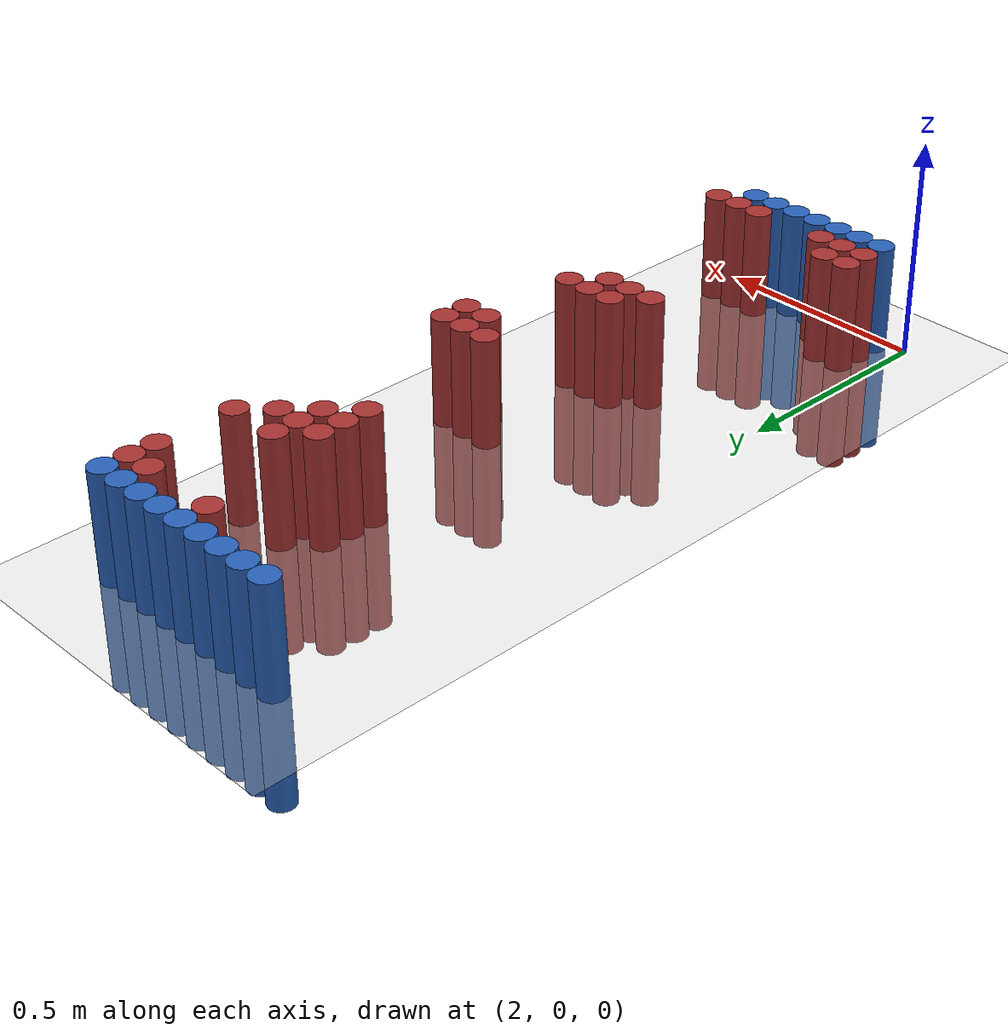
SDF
<sdf version="1.6">
 <world name="default">
  <model name="ground_plane">
   <static>1</static>
   <link name="link">
    <collision name="collision">
     <geometry><plane><normal>0 0 1</normal><size>100 100</size></plane></geometry>
     <surface><friction><ode><mu>100</mu><mu2>50</mu2></ode></friction></surface>
    </collision>
    <visual name="visual">
     <cast_shadows>0</cast_shadows>
     <geometry><plane><normal>0 0 1</normal><size>100 100</size></plane></geometry>
     <material>
      <script><uri>file://media/materials/scripts/gazebo.material</uri><name>Gazebo/Grey</name></script>
     </material>
    </visual>
   </link>
  </model>
  <model name="unit_cylinder_94">
   <static>1</static>
   <pose>2.010000 1.770000 0.000000 0.000000 0.000000 0.000000</pose>
   <link name="link">
    <inertial>
     <mass>1</mass>
     <inertia><ixx>0.145833</ixx><ixy>0</ixy><ixz>0</ixz><iyy>0.145833</iyy><iyz>0</iyz><izz>0.125</izz></inertia>
    </inertial>
    <collision name="collision">
     <geometry><cylinder><radius>0.030000</radius><length>0.5</length></cylinder></geometry>
    </collision>
    <visual name="visual">
     <geometry><cylinder><radius>0.030000</radius><length>0.5</length></cylinder></geometry>
     <material>
      <ambient>0.152000 0.379000 0.720000 1</ambient>
      <diffuse>0.152000 0.379000 0.720000 1</diffuse>
     </material>
     <material>
      <script><name>Gazebo/Grey</name><uri>file://media/materials/scripts/gazebo.material</uri></script>
     </material>
    </visual>
   </link>
  </model>
  <model name="unit_cylinder_95">
   <static>1</static>
   <pose>2.070000 1.770000 0.000000 0.000000 0.000000 0.000000</pose>
   <link name="link">
    <inertial>
     <mass>1</mass>
     <inertia><ixx>0.145833</ixx><ixy>0</ixy><ixz>0</ixz><iyy>0.145833</iyy><iyz>0</iyz><izz>0.125</izz></inertia>
    </inertial>
    <collision name="collision">
     <geometry><cylinder><radius>0.030000</radius><length>0.5</length></cylinder></geometry>
    </collision>
    <visual name="visual">
     <geometry><cylinder><radius>0.030000</radius><length>0.5</length></cylinder></geometry>
     <material>
      <ambient>0.152000 0.379000 0.720000 1</ambient>
      <diffuse>0.152000 0.379000 0.720000 1</diffuse>
     </material>
     <material>
      <script><name>Gazebo/Grey</name><uri>file://media/materials/scripts/gazebo.material</uri></script>
     </material>
    </visual>
   </link>
  </model>
  <model name="unit_cylinder_96">
   <static>1</static>
   <pose>2.130000 1.770000 0.000000 0.000000 0.000000 0.000000</pose>
   <link name="link">
    <inertial>
     <mass>1</mass>
     <inertia><ixx>0.145833</ixx><ixy>0</ixy><ixz>0</ixz><iyy>0.145833</iyy><iyz>0</iyz><izz>0.125</izz></inertia>
    </inertial>
    <collision name="collision">
     <geometry><cylinder><radius>0.030000</radius><length>0.5</length></cylinder></geometry>
    </collision>
    <visual name="visual">
     <geometry><cylinder><radius>0.030000</radius><length>0.5</length></cylinder></geometry>
     <material>
      <ambient>0.152000 0.379000 0.720000 1</ambient>
      <diffuse>0.152000 0.379000 0.720000 1</diffuse>
     </material>
     <material>
      <script><name>Gazebo/Grey</name><uri>file://media/materials/scripts/gazebo.material</uri></script>
     </material>
    </visual>
   </link>
  </model>
  <model name="unit_cylinder_97">
   <static>1</static>
   <pose>2.190000 1.770000 0.000000 0.000000 0.000000 0.000000</pose>
   <link name="link">
    <inertial>
     <mass>1</mass>
     <inertia><ixx>0.145833</ixx><ixy>0</ixy><ixz>0</ixz><iyy>0.145833</iyy><iyz>0</iyz><izz>0.125</izz></inertia>
    </inertial>
    <collision name="collision">
     <geometry><cylinder><radius>0.030000</radius><length>0.5</length></cylinder></geometry>
    </collision>
    <visual name="visual">
     <geometry><cylinder><radius>0.030000</radius><length>0.5</length></cylinder></geometry>
     <material>
      <ambient>0.152000 0.379000 0.720000 1</ambient>
      <diffuse>0.152000 0.379000 0.720000 1</diffuse>
     </material>
     <material>
      <script><name>Gazebo/Grey</name><uri>file://media/materials/scripts/gazebo.material</uri></script>
     </material>
    </visual>
   </link>
  </model>
  <model name="unit_cylinder_98">
   <static>1</static>
   <pose>2.250000 1.770000 0.000000 0.000000 0.000000 0.000000</pose>
   <link name="link">
    <inertial>
     <mass>1</mass>
     <inertia><ixx>0.145833</ixx><ixy>0</ixy><ixz>0</ixz><iyy>0.145833</iyy><iyz>0</iyz><izz>0.125</izz></inertia>
    </inertial>
    <collision name="collision">
     <geometry><cylinder><radius>0.030000</radius><length>0.5</length></cylinder></geometry>
    </collision>
    <visual name="visual">
     <geometry><cylinder><radius>0.030000</radius><length>0.5</length></cylinder></geometry>
     <material>
      <ambient>0.152000 0.379000 0.720000 1</ambient>
      <diffuse>0.152000 0.379000 0.720000 1</diffuse>
     </material>
     <material>
      <script><name>Gazebo/Grey</name><uri>file://media/materials/scripts/gazebo.material</uri></script>
     </material>
    </visual>
   </link>
  </model>
  <model name="unit_cylinder_99">
   <static>1</static>
   <pose>2.310000 1.770000 0.000000 0.000000 0.000000 0.000000</pose>
   <link name="link">
    <inertial>
     <mass>1</mass>
     <inertia><ixx>0.145833</ixx><ixy>0</ixy><ixz>0</ixz><iyy>0.145833</iyy><iyz>0</iyz><izz>0.125</izz></inertia>
    </inertial>
    <collision name="collision">
     <geometry><cylinder><radius>0.030000</radius><length>0.5</length></cylinder></geometry>
    </collision>
    <visual name="visual">
     <geometry><cylinder><radius>0.030000</radius><length>0.5</length></cylinder></geometry>
     <material>
      <ambient>0.152000 0.379000 0.720000 1</ambient>
      <diffuse>0.152000 0.379000 0.720000 1</diffuse>
     </material>
     <material>
      <script><name>Gazebo/Grey</name><uri>file://media/materials/scripts/gazebo.material</uri></script>
     </material>
    </visual>
   </link>
  </model>
  <model name="unit_cylinder_100">
   <static>1</static>
   <pose>2.370000 1.770000 0.000000 0.000000 0.000000 0.000000</pose>
   <link name="link">
    <inertial>
     <mass>1</mass>
     <inertia><ixx>0.145833</ixx><ixy>0</ixy><ixz>0</ixz><iyy>0.145833</iyy><iyz>0</iyz><izz>0.125</izz></inertia>
    </inertial>
    <collision name="collision">
     <geometry><cylinder><radius>0.030000</radius><length>0.5</length></cylinder></geometry>
    </collision>
    <visual name="visual">
     <geometry><cylinder><radius>0.030000</radius><length>0.5</length></cylinder></geometry>
     <material>
      <ambient>0.152000 0.379000 0.720000 1</ambient>
      <diffuse>0.152000 0.379000 0.720000 1</diffuse>
     </material>
     <material>
      <script><name>Gazebo/Grey</name><uri>file://media/materials/scripts/gazebo.material</uri></script>
     </material>
    </visual>
   </link>
  </model>
  <model name="unit_cylinder_101">
   <static>1</static>
   <pose>2.430000 1.770000 0.000000 0.000000 0.000000 0.000000</pose>
   <link name="link">
    <inertial>
     <mass>1</mass>
     <inertia><ixx>0.145833</ixx><ixy>0</ixy><ixz>0</ixz><iyy>0.145833</iyy><iyz>0</iyz><izz>0.125</izz></inertia>
    </inertial>
    <collision name="collision">
     <geometry><cylinder><radius>0.030000</radius><length>0.5</length></cylinder></geometry>
    </collision>
    <visual name="visual">
     <geometry><cylinder><radius>0.030000</radius><length>0.5</length></cylinder></geometry>
     <material>
      <ambient>0.152000 0.379000 0.720000 1</ambient>
      <diffuse>0.152000 0.379000 0.720000 1</diffuse>
     </material>
     <material>
      <script><name>Gazebo/Grey</name><uri>file://media/materials/scripts/gazebo.material</uri></script>
     </material>
    </visual>
   </link>
  </model>
  <model name="unit_cylinder_102">
   <static>1</static>
   <pose>2.490000 1.770000 0.000000 0.000000 0.000000 0.000000</pose>
   <link name="link">
    <inertial>
     <mass>1</mass>
     <inertia><ixx>0.145833</ixx><ixy>0</ixy><ixz>0</ixz><iyy>0.145833</iyy><iyz>0</iyz><izz>0.125</izz></inertia>
    </inertial>
    <collision name="collision">
     <geometry><cylinder><radius>0.030000</radius><length>0.5</length></cylinder></geometry>
    </collision>
    <visual name="visual">
     <geometry><cylinder><radius>0.030000</radius><length>0.5</length></cylinder></geometry>
     <material>
      <ambient>0.152000 0.379000 0.720000 1</ambient>
      <diffuse>0.152000 0.379000 0.720000 1</diffuse>
     </material>
     <material>
      <script><name>Gazebo/Grey</name><uri>file://media/materials/scripts/gazebo.material</uri></script>
     </material>
    </visual>
   </link>
  </model>
  <model name="unit_cylinder_125">
   <static>1</static>
   <pose>2.250000 1.710000 0.000000 0.000000 0.000000 0.000000</pose>
   <link name="link">
    <inertial>
     <mass>1</mass>
     <inertia><ixx>0.145833</ixx><ixy>0</ixy><ixz>0</ixz><iyy>0.145833</iyy><iyz>0</iyz><izz>0.125</izz></inertia>
    </inertial>
    <collision name="collision">
     <geometry><cylinder><radius>0.030000</radius><length>0.5</length></cylinder></geometry>
    </collision>
    <visual name="visual">
     <geometry><cylinder><radius>0.030000</radius><length>0.5</length></cylinder></geometry>
     <material>
      <ambient>0.648000 0.192000 0.192000 1</ambient>
      <diffuse>0.648000 0.192000 0.192000 1</diffuse>
     </material>
     <material>
      <script><name>Gazebo/Grey</name><uri>file://media/materials/scripts/gazebo.material</uri></script>
     </material>
    </visual>
   </link>
  </model>
  <model name="unit_cylinder_126">
   <static>1</static>
   <pose>2.430000 1.710000 0.000000 0.000000 0.000000 0.000000</pose>
   <link name="link">
    <inertial>
     <mass>1</mass>
     <inertia><ixx>0.145833</ixx><ixy>0</ixy><ixz>0</ixz><iyy>0.145833</iyy><iyz>0</iyz><izz>0.125</izz></inertia>
    </inertial>
    <collision name="collision">
     <geometry><cylinder><radius>0.030000</radius><length>0.5</length></cylinder></geometry>
    </collision>
    <visual name="visual">
     <geometry><cylinder><radius>0.030000</radius><length>0.5</length></cylinder></geometry>
     <material>
      <ambient>0.648000 0.192000 0.192000 1</ambient>
      <diffuse>0.648000 0.192000 0.192000 1</diffuse>
     </material>
     <material>
      <script><name>Gazebo/Grey</name><uri>file://media/materials/scripts/gazebo.material</uri></script>
     </material>
    </visual>
   </link>
  </model>
  <model name="unit_cylinder_127">
   <static>1</static>
   <pose>2.490000 1.710000 0.000000 0.000000 0.000000 0.000000</pose>
   <link name="link">
    <inertial>
     <mass>1</mass>
     <inertia><ixx>0.145833</ixx><ixy>0</ixy><ixz>0</ixz><iyy>0.145833</iyy><iyz>0</iyz><izz>0.125</izz></inertia>
    </inertial>
    <collision name="collision">
     <geometry><cylinder><radius>0.030000</radius><length>0.5</length></cylinder></geometry>
    </collision>
    <visual name="visual">
     <geometry><cylinder><radius>0.030000</radius><length>0.5</length></cylinder></geometry>
     <material>
      <ambient>0.648000 0.192000 0.192000 1</ambient>
      <diffuse>0.648000 0.192000 0.192000 1</diffuse>
     </material>
     <material>
      <script><name>Gazebo/Grey</name><uri>file://media/materials/scripts/gazebo.material</uri></script>
     </material>
    </visual>
   </link>
  </model>
  <model name="unit_cylinder_136">
   <static>1</static>
   <pose>2.490000 1.650000 0.000000 0.000000 0.000000 0.000000</pose>
   <link name="link">
    <inertial>
     <mass>1</mass>
     <inertia><ixx>0.145833</ixx><ixy>0</ixy><ixz>0</ixz><iyy>0.145833</iyy><iyz>0</iyz><izz>0.125</izz></inertia>
    </inertial>
    <collision name="collision">
     <geometry><cylinder><radius>0.030000</radius><length>0.5</length></cylinder></geometry>
    </collision>
    <visual name="visual">
     <geometry><cylinder><radius>0.030000</radius><length>0.5</length></cylinder></geometry>
     <material>
      <ambient>0.648000 0.192000 0.192000 1</ambient>
      <diffuse>0.648000 0.192000 0.192000 1</diffuse>
     </material>
     <material>
      <script><name>Gazebo/Grey</name><uri>file://media/materials/scripts/gazebo.material</uri></script>
     </material>
    </visual>
   </link>
  </model>
  <model name="unit_cylinder_162">
   <static>1</static>
   <pose>2.370000 1.470000 0.000000 0.000000 0.000000 0.000000</pose>
   <link name="link">
    <inertial>
     <mass>1</mass>
     <inertia><ixx>0.145833</ixx><ixy>0</ixy><ixz>0</ixz><iyy>0.145833</iyy><iyz>0</iyz><izz>0.125</izz></inertia>
    </inertial>
    <collision name="collision">
     <geometry><cylinder><radius>0.030000</radius><length>0.5</length></cylinder></geometry>
    </collision>
    <visual name="visual">
     <geometry><cylinder><radius>0.030000</radius><length>0.5</length></cylinder></geometry>
     <material>
      <ambient>0.648000 0.192000 0.192000 1</ambient>
      <diffuse>0.648000 0.192000 0.192000 1</diffuse>
     </material>
     <material>
      <script><name>Gazebo/Grey</name><uri>file://media/materials/scripts/gazebo.material</uri></script>
     </material>
    </visual>
   </link>
  </model>
  <model name="unit_cylinder_163">
   <static>1</static>
   <pose>2.490000 1.470000 0.000000 0.000000 0.000000 0.000000</pose>
   <link name="link">
    <inertial>
     <mass>1</mass>
     <inertia><ixx>0.145833</ixx><ixy>0</ixy><ixz>0</ixz><iyy>0.145833</iyy><iyz>0</iyz><izz>0.125</izz></inertia>
    </inertial>
    <collision name="collision">
     <geometry><cylinder><radius>0.030000</radius><length>0.5</length></cylinder></geometry>
    </collision>
    <visual name="visual">
     <geometry><cylinder><radius>0.030000</radius><length>0.5</length></cylinder></geometry>
     <material>
      <ambient>0.648000 0.192000 0.192000 1</ambient>
      <diffuse>0.648000 0.192000 0.192000 1</diffuse>
     </material>
     <material>
      <script><name>Gazebo/Grey</name><uri>file://media/materials/scripts/gazebo.material</uri></script>
     </material>
    </visual>
   </link>
  </model>
  <model name="unit_cylinder_175">
   <static>1</static>
   <pose>2.310000 1.410000 0.000000 0.000000 0.000000 0.000000</pose>
   <link name="link">
    <inertial>
     <mass>1</mass>
     <inertia><ixx>0.145833</ixx><ixy>0</ixy><ixz>0</ixz><iyy>0.145833</iyy><iyz>0</iyz><izz>0.125</izz></inertia>
    </inertial>
    <collision name="collision">
     <geometry><cylinder><radius>0.030000</radius><length>0.5</length></cylinder></geometry>
    </collision>
    <visual name="visual">
     <geometry><cylinder><radius>0.030000</radius><length>0.5</length></cylinder></geometry>
     <material>
      <ambient>0.648000 0.192000 0.192000 1</ambient>
      <diffuse>0.648000 0.192000 0.192000 1</diffuse>
     </material>
     <material>
      <script><name>Gazebo/Grey</name><uri>file://media/materials/scripts/gazebo.material</uri></script>
     </material>
    </visual>
   </link>
  </model>
  <model name="unit_cylinder_176">
   <static>1</static>
   <pose>2.370000 1.410000 0.000000 0.000000 0.000000 0.000000</pose>
   <link name="link">
    <inertial>
     <mass>1</mass>
     <inertia><ixx>0.145833</ixx><ixy>0</ixy><ixz>0</ixz><iyy>0.145833</iyy><iyz>0</iyz><izz>0.125</izz></inertia>
    </inertial>
    <collision name="collision">
     <geometry><cylinder><radius>0.030000</radius><length>0.5</length></cylinder></geometry>
    </collision>
    <visual name="visual">
     <geometry><cylinder><radius>0.030000</radius><length>0.5</length></cylinder></geometry>
     <material>
      <ambient>0.648000 0.192000 0.192000 1</ambient>
      <diffuse>0.648000 0.192000 0.192000 1</diffuse>
     </material>
     <material>
      <script><name>Gazebo/Grey</name><uri>file://media/materials/scripts/gazebo.material</uri></script>
     </material>
    </visual>
   </link>
  </model>
  <model name="unit_cylinder_177">
   <static>1</static>
   <pose>2.430000 1.410000 0.000000 0.000000 0.000000 0.000000</pose>
   <link name="link">
    <inertial>
     <mass>1</mass>
     <inertia><ixx>0.145833</ixx><ixy>0</ixy><ixz>0</ixz><iyy>0.145833</iyy><iyz>0</iyz><izz>0.125</izz></inertia>
    </inertial>
    <collision name="collision">
     <geometry><cylinder><radius>0.030000</radius><length>0.5</length></cylinder></geometry>
    </collision>
    <visual name="visual">
     <geometry><cylinder><radius>0.030000</radius><length>0.5</length></cylinder></geometry>
     <material>
      <ambient>0.648000 0.192000 0.192000 1</ambient>
      <diffuse>0.648000 0.192000 0.192000 1</diffuse>
     </material>
     <material>
      <script><name>Gazebo/Grey</name><uri>file://media/materials/scripts/gazebo.material</uri></script>
     </material>
    </visual>
   </link>
  </model>
  <model name="unit_cylinder_188">
   <static>1</static>
   <pose>2.310000 1.350000 0.000000 0.000000 0.000000 0.000000</pose>
   <link name="link">
    <inertial>
     <mass>1</mass>
     <inertia><ixx>0.145833</ixx><ixy>0</ixy><ixz>0</ixz><iyy>0.145833</iyy><iyz>0</iyz><izz>0.125</izz></inertia>
    </inertial>
    <collision name="collision">
     <geometry><cylinder><radius>0.030000</radius><length>0.5</length></cylinder></geometry>
    </collision>
    <visual name="visual">
     <geometry><cylinder><radius>0.030000</radius><length>0.5</length></cylinder></geometry>
     <material>
      <ambient>0.648000 0.192000 0.192000 1</ambient>
      <diffuse>0.648000 0.192000 0.192000 1</diffuse>
     </material>
     <material>
      <script><name>Gazebo/Grey</name><uri>file://media/materials/scripts/gazebo.material</uri></script>
     </material>
    </visual>
   </link>
  </model>
  <model name="unit_cylinder_189">
   <static>1</static>
   <pose>2.370000 1.350000 0.000000 0.000000 0.000000 0.000000</pose>
   <link name="link">
    <inertial>
     <mass>1</mass>
     <inertia><ixx>0.145833</ixx><ixy>0</ixy><ixz>0</ixz><iyy>0.145833</iyy><iyz>0</iyz><izz>0.125</izz></inertia>
    </inertial>
    <collision name="collision">
     <geometry><cylinder><radius>0.030000</radius><length>0.5</length></cylinder></geometry>
    </collision>
    <visual name="visual">
     <geometry><cylinder><radius>0.030000</radius><length>0.5</length></cylinder></geometry>
     <material>
      <ambient>0.648000 0.192000 0.192000 1</ambient>
      <diffuse>0.648000 0.192000 0.192000 1</diffuse>
     </material>
     <material>
      <script><name>Gazebo/Grey</name><uri>file://media/materials/scripts/gazebo.material</uri></script>
     </material>
    </visual>
   </link>
  </model>
  <model name="unit_cylinder_193">
   <static>1</static>
   <pose>2.310000 1.290000 0.000000 0.000000 0.000000 0.000000</pose>
   <link name="link">
    <inertial>
     <mass>1</mass>
     <inertia><ixx>0.145833</ixx><ixy>0</ixy><ixz>0</ixz><iyy>0.145833</iyy><iyz>0</iyz><izz>0.125</izz></inertia>
    </inertial>
    <collision name="collision">
     <geometry><cylinder><radius>0.030000</radius><length>0.5</length></cylinder></geometry>
    </collision>
    <visual name="visual">
     <geometry><cylinder><radius>0.030000</radius><length>0.5</length></cylinder></geometry>
     <material>
      <ambient>0.648000 0.192000 0.192000 1</ambient>
      <diffuse>0.648000 0.192000 0.192000 1</diffuse>
     </material>
     <material>
      <script><name>Gazebo/Grey</name><uri>file://media/materials/scripts/gazebo.material</uri></script>
     </material>
    </visual>
   </link>
  </model>
  <model name="unit_cylinder_199">
   <static>1</static>
   <pose>2.370000 0.930000 0.000000 0.000000 0.000000 0.000000</pose>
   <link name="link">
    <inertial>
     <mass>1</mass>
     <inertia><ixx>0.145833</ixx><ixy>0</ixy><ixz>0</ixz><iyy>0.145833</iyy><iyz>0</iyz><izz>0.125</izz></inertia>
    </inertial>
    <collision name="collision">
     <geometry><cylinder><radius>0.030000</radius><length>0.5</length></cylinder></geometry>
    </collision>
    <visual name="visual">
     <geometry><cylinder><radius>0.030000</radius><length>0.5</length></cylinder></geometry>
     <material>
      <ambient>0.648000 0.192000 0.192000 1</ambient>
      <diffuse>0.648000 0.192000 0.192000 1</diffuse>
     </material>
     <material>
      <script><name>Gazebo/Grey</name><uri>file://media/materials/scripts/gazebo.material</uri></script>
     </material>
    </visual>
   </link>
  </model>
  <model name="unit_cylinder_200">
   <static>1</static>
   <pose>2.430000 0.930000 0.000000 0.000000 0.000000 0.000000</pose>
   <link name="link">
    <inertial>
     <mass>1</mass>
     <inertia><ixx>0.145833</ixx><ixy>0</ixy><ixz>0</ixz><iyy>0.145833</iyy><iyz>0</iyz><izz>0.125</izz></inertia>
    </inertial>
    <collision name="collision">
     <geometry><cylinder><radius>0.030000</radius><length>0.5</length></cylinder></geometry>
    </collision>
    <visual name="visual">
     <geometry><cylinder><radius>0.030000</radius><length>0.5</length></cylinder></geometry>
     <material>
      <ambient>0.648000 0.192000 0.192000 1</ambient>
      <diffuse>0.648000 0.192000 0.192000 1</diffuse>
     </material>
     <material>
      <script><name>Gazebo/Grey</name><uri>file://media/materials/scripts/gazebo.material</uri></script>
     </material>
    </visual>
   </link>
  </model>
  <model name="unit_cylinder_201">
   <static>1</static>
   <pose>2.490000 0.930000 0.000000 0.000000 0.000000 0.000000</pose>
   <link name="link">
    <inertial>
     <mass>1</mass>
     <inertia><ixx>0.145833</ixx><ixy>0</ixy><ixz>0</ixz><iyy>0.145833</iyy><iyz>0</iyz><izz>0.125</izz></inertia>
    </inertial>
    <collision name="collision">
     <geometry><cylinder><radius>0.030000</radius><length>0.5</length></cylinder></geometry>
    </collision>
    <visual name="visual">
     <geometry><cylinder><radius>0.030000</radius><length>0.5</length></cylinder></geometry>
     <material>
      <ambient>0.648000 0.192000 0.192000 1</ambient>
      <diffuse>0.648000 0.192000 0.192000 1</diffuse>
     </material>
     <material>
      <script><name>Gazebo/Grey</name><uri>file://media/materials/scripts/gazebo.material</uri></script>
     </material>
    </visual>
   </link>
  </model>
  <model name="unit_cylinder_210">
   <static>1</static>
   <pose>2.430000 0.870000 0.000000 0.000000 0.000000 0.000000</pose>
   <link name="link">
    <inertial>
     <mass>1</mass>
     <inertia><ixx>0.145833</ixx><ixy>0</ixy><ixz>0</ixz><iyy>0.145833</iyy><iyz>0</iyz><izz>0.125</izz></inertia>
    </inertial>
    <collision name="collision">
     <geometry><cylinder><radius>0.030000</radius><length>0.5</length></cylinder></geometry>
    </collision>
    <visual name="visual">
     <geometry><cylinder><radius>0.030000</radius><length>0.5</length></cylinder></geometry>
     <material>
      <ambient>0.648000 0.192000 0.192000 1</ambient>
      <diffuse>0.648000 0.192000 0.192000 1</diffuse>
     </material>
     <material>
      <script><name>Gazebo/Grey</name><uri>file://media/materials/scripts/gazebo.material</uri></script>
     </material>
    </visual>
   </link>
  </model>
  <model name="unit_cylinder_211">
   <static>1</static>
   <pose>2.490000 0.870000 0.000000 0.000000 0.000000 0.000000</pose>
   <link name="link">
    <inertial>
     <mass>1</mass>
     <inertia><ixx>0.145833</ixx><ixy>0</ixy><ixz>0</ixz><iyy>0.145833</iyy><iyz>0</iyz><izz>0.125</izz></inertia>
    </inertial>
    <collision name="collision">
     <geometry><cylinder><radius>0.030000</radius><length>0.5</length></cylinder></geometry>
    </collision>
    <visual name="visual">
     <geometry><cylinder><radius>0.030000</radius><length>0.5</length></cylinder></geometry>
     <material>
      <ambient>0.648000 0.192000 0.192000 1</ambient>
      <diffuse>0.648000 0.192000 0.192000 1</diffuse>
     </material>
     <material>
      <script><name>Gazebo/Grey</name><uri>file://media/materials/scripts/gazebo.material</uri></script>
     </material>
    </visual>
   </link>
  </model>
  <model name="unit_cylinder_232">
   <static>1</static>
   <pose>2.310000 0.630000 0.000000 0.000000 0.000000 0.000000</pose>
   <link name="link">
    <inertial>
     <mass>1</mass>
     <inertia><ixx>0.145833</ixx><ixy>0</ixy><ixz>0</ixz><iyy>0.145833</iyy><iyz>0</iyz><izz>0.125</izz></inertia>
    </inertial>
    <collision name="collision">
     <geometry><cylinder><radius>0.030000</radius><length>0.5</length></cylinder></geometry>
    </collision>
    <visual name="visual">
     <geometry><cylinder><radius>0.030000</radius><length>0.5</length></cylinder></geometry>
     <material>
      <ambient>0.648000 0.192000 0.192000 1</ambient>
      <diffuse>0.648000 0.192000 0.192000 1</diffuse>
     </material>
     <material>
      <script><name>Gazebo/Grey</name><uri>file://media/materials/scripts/gazebo.material</uri></script>
     </material>
    </visual>
   </link>
  </model>
  <model name="unit_cylinder_233">
   <static>1</static>
   <pose>2.370000 0.630000 0.000000 0.000000 0.000000 0.000000</pose>
   <link name="link">
    <inertial>
     <mass>1</mass>
     <inertia><ixx>0.145833</ixx><ixy>0</ixy><ixz>0</ixz><iyy>0.145833</iyy><iyz>0</iyz><izz>0.125</izz></inertia>
    </inertial>
    <collision name="collision">
     <geometry><cylinder><radius>0.030000</radius><length>0.5</length></cylinder></geometry>
    </collision>
    <visual name="visual">
     <geometry><cylinder><radius>0.030000</radius><length>0.5</length></cylinder></geometry>
     <material>
      <ambient>0.648000 0.192000 0.192000 1</ambient>
      <diffuse>0.648000 0.192000 0.192000 1</diffuse>
     </material>
     <material>
      <script><name>Gazebo/Grey</name><uri>file://media/materials/scripts/gazebo.material</uri></script>
     </material>
    </visual>
   </link>
  </model>
  <model name="unit_cylinder_234">
   <static>1</static>
   <pose>2.430000 0.630000 0.000000 0.000000 0.000000 0.000000</pose>
   <link name="link">
    <inertial>
     <mass>1</mass>
     <inertia><ixx>0.145833</ixx><ixy>0</ixy><ixz>0</ixz><iyy>0.145833</iyy><iyz>0</iyz><izz>0.125</izz></inertia>
    </inertial>
    <collision name="collision">
     <geometry><cylinder><radius>0.030000</radius><length>0.5</length></cylinder></geometry>
    </collision>
    <visual name="visual">
     <geometry><cylinder><radius>0.030000</radius><length>0.5</length></cylinder></geometry>
     <material>
      <ambient>0.648000 0.192000 0.192000 1</ambient>
      <diffuse>0.648000 0.192000 0.192000 1</diffuse>
     </material>
     <material>
      <script><name>Gazebo/Grey</name><uri>file://media/materials/scripts/gazebo.material</uri></script>
     </material>
    </visual>
   </link>
  </model>
  <model name="unit_cylinder_244">
   <static>1</static>
   <pose>2.250000 0.570000 0.000000 0.000000 0.000000 0.000000</pose>
   <link name="link">
    <inertial>
     <mass>1</mass>
     <inertia><ixx>0.145833</ixx><ixy>0</ixy><ixz>0</ixz><iyy>0.145833</iyy><iyz>0</iyz><izz>0.125</izz></inertia>
    </inertial>
    <collision name="collision">
     <geometry><cylinder><radius>0.030000</radius><length>0.5</length></cylinder></geometry>
    </collision>
    <visual name="visual">
     <geometry><cylinder><radius>0.030000</radius><length>0.5</length></cylinder></geometry>
     <material>
      <ambient>0.648000 0.192000 0.192000 1</ambient>
      <diffuse>0.648000 0.192000 0.192000 1</diffuse>
     </material>
     <material>
      <script><name>Gazebo/Grey</name><uri>file://media/materials/scripts/gazebo.material</uri></script>
     </material>
    </visual>
   </link>
  </model>
  <model name="unit_cylinder_245">
   <static>1</static>
   <pose>2.310000 0.570000 0.000000 0.000000 0.000000 0.000000</pose>
   <link name="link">
    <inertial>
     <mass>1</mass>
     <inertia><ixx>0.145833</ixx><ixy>0</ixy><ixz>0</ixz><iyy>0.145833</iyy><iyz>0</iyz><izz>0.125</izz></inertia>
    </inertial>
    <collision name="collision">
     <geometry><cylinder><radius>0.030000</radius><length>0.5</length></cylinder></geometry>
    </collision>
    <visual name="visual">
     <geometry><cylinder><radius>0.030000</radius><length>0.5</length></cylinder></geometry>
     <material>
      <ambient>0.648000 0.192000 0.192000 1</ambient>
      <diffuse>0.648000 0.192000 0.192000 1</diffuse>
     </material>
     <material>
      <script><name>Gazebo/Grey</name><uri>file://media/materials/scripts/gazebo.material</uri></script>
     </material>
    </visual>
   </link>
  </model>
  <model name="unit_cylinder_246">
   <static>1</static>
   <pose>2.370000 0.570000 0.000000 0.000000 0.000000 0.000000</pose>
   <link name="link">
    <inertial>
     <mass>1</mass>
     <inertia><ixx>0.145833</ixx><ixy>0</ixy><ixz>0</ixz><iyy>0.145833</iyy><iyz>0</iyz><izz>0.125</izz></inertia>
    </inertial>
    <collision name="collision">
     <geometry><cylinder><radius>0.030000</radius><length>0.5</length></cylinder></geometry>
    </collision>
    <visual name="visual">
     <geometry><cylinder><radius>0.030000</radius><length>0.5</length></cylinder></geometry>
     <material>
      <ambient>0.648000 0.192000 0.192000 1</ambient>
      <diffuse>0.648000 0.192000 0.192000 1</diffuse>
     </material>
     <material>
      <script><name>Gazebo/Grey</name><uri>file://media/materials/scripts/gazebo.material</uri></script>
     </material>
    </visual>
   </link>
  </model>
  <model name="unit_cylinder_271">
   <static>1</static>
   <pose>2.070000 0.150000 0.000000 0.000000 0.000000 0.000000</pose>
   <link name="link">
    <inertial>
     <mass>1</mass>
     <inertia><ixx>0.145833</ixx><ixy>0</ixy><ixz>0</ixz><iyy>0.145833</iyy><iyz>0</iyz><izz>0.125</izz></inertia>
    </inertial>
    <collision name="collision">
     <geometry><cylinder><radius>0.030000</radius><length>0.5</length></cylinder></geometry>
    </collision>
    <visual name="visual">
     <geometry><cylinder><radius>0.030000</radius><length>0.5</length></cylinder></geometry>
     <material>
      <ambient>0.648000 0.192000 0.192000 1</ambient>
      <diffuse>0.648000 0.192000 0.192000 1</diffuse>
     </material>
     <material>
      <script><name>Gazebo/Grey</name><uri>file://media/materials/scripts/gazebo.material</uri></script>
     </material>
    </visual>
   </link>
  </model>
  <model name="unit_cylinder_272">
   <static>1</static>
   <pose>2.130000 0.150000 0.000000 0.000000 0.000000 0.000000</pose>
   <link name="link">
    <inertial>
     <mass>1</mass>
     <inertia><ixx>0.145833</ixx><ixy>0</ixy><ixz>0</ixz><iyy>0.145833</iyy><iyz>0</iyz><izz>0.125</izz></inertia>
    </inertial>
    <collision name="collision">
     <geometry><cylinder><radius>0.030000</radius><length>0.5</length></cylinder></geometry>
    </collision>
    <visual name="visual">
     <geometry><cylinder><radius>0.030000</radius><length>0.5</length></cylinder></geometry>
     <material>
      <ambient>0.648000 0.192000 0.192000 1</ambient>
      <diffuse>0.648000 0.192000 0.192000 1</diffuse>
     </material>
     <material>
      <script><name>Gazebo/Grey</name><uri>file://media/materials/scripts/gazebo.material</uri></script>
     </material>
    </visual>
   </link>
  </model>
  <model name="unit_cylinder_283">
   <static>1</static>
   <pose>2.070000 0.090000 0.000000 0.000000 0.000000 0.000000</pose>
   <link name="link">
    <inertial>
     <mass>1</mass>
     <inertia><ixx>0.145833</ixx><ixy>0</ixy><ixz>0</ixz><iyy>0.145833</iyy><iyz>0</iyz><izz>0.125</izz></inertia>
    </inertial>
    <collision name="collision">
     <geometry><cylinder><radius>0.030000</radius><length>0.5</length></cylinder></geometry>
    </collision>
    <visual name="visual">
     <geometry><cylinder><radius>0.030000</radius><length>0.5</length></cylinder></geometry>
     <material>
      <ambient>0.648000 0.192000 0.192000 1</ambient>
      <diffuse>0.648000 0.192000 0.192000 1</diffuse>
     </material>
     <material>
      <script><name>Gazebo/Grey</name><uri>file://media/materials/scripts/gazebo.material</uri></script>
     </material>
    </visual>
   </link>
  </model>
  <model name="unit_cylinder_284">
   <static>1</static>
   <pose>2.130000 0.090000 0.000000 0.000000 0.000000 0.000000</pose>
   <link name="link">
    <inertial>
     <mass>1</mass>
     <inertia><ixx>0.145833</ixx><ixy>0</ixy><ixz>0</ixz><iyy>0.145833</iyy><iyz>0</iyz><izz>0.125</izz></inertia>
    </inertial>
    <collision name="collision">
     <geometry><cylinder><radius>0.030000</radius><length>0.5</length></cylinder></geometry>
    </collision>
    <visual name="visual">
     <geometry><cylinder><radius>0.030000</radius><length>0.5</length></cylinder></geometry>
     <material>
      <ambient>0.648000 0.192000 0.192000 1</ambient>
      <diffuse>0.648000 0.192000 0.192000 1</diffuse>
     </material>
     <material>
      <script><name>Gazebo/Grey</name><uri>file://media/materials/scripts/gazebo.material</uri></script>
     </material>
    </visual>
   </link>
  </model>
  <model name="unit_cylinder_285">
   <static>1</static>
   <pose>2.190000 0.090000 0.000000 0.000000 0.000000 0.000000</pose>
   <link name="link">
    <inertial>
     <mass>1</mass>
     <inertia><ixx>0.145833</ixx><ixy>0</ixy><ixz>0</ixz><iyy>0.145833</iyy><iyz>0</iyz><izz>0.125</izz></inertia>
    </inertial>
    <collision name="collision">
     <geometry><cylinder><radius>0.030000</radius><length>0.5</length></cylinder></geometry>
    </collision>
    <visual name="visual">
     <geometry><cylinder><radius>0.030000</radius><length>0.5</length></cylinder></geometry>
     <material>
      <ambient>0.648000 0.192000 0.192000 1</ambient>
      <diffuse>0.648000 0.192000 0.192000 1</diffuse>
     </material>
     <material>
      <script><name>Gazebo/Grey</name><uri>file://media/materials/scripts/gazebo.material</uri></script>
     </material>
    </visual>
   </link>
  </model>
  <model name="unit_cylinder_286">
   <static>1</static>
   <pose>2.370000 0.090000 0.000000 0.000000 0.000000 0.000000</pose>
   <link name="link">
    <inertial>
     <mass>1</mass>
     <inertia><ixx>0.145833</ixx><ixy>0</ixy><ixz>0</ixz><iyy>0.145833</iyy><iyz>0</iyz><izz>0.125</izz></inertia>
    </inertial>
    <collision name="collision">
     <geometry><cylinder><radius>0.030000</radius><length>0.5</length></cylinder></geometry>
    </collision>
    <visual name="visual">
     <geometry><cylinder><radius>0.030000</radius><length>0.5</length></cylinder></geometry>
     <material>
      <ambient>0.648000 0.192000 0.192000 1</ambient>
      <diffuse>0.648000 0.192000 0.192000 1</diffuse>
     </material>
     <material>
      <script><name>Gazebo/Grey</name><uri>file://media/materials/scripts/gazebo.material</uri></script>
     </material>
    </visual>
   </link>
  </model>
  <model name="unit_cylinder_287">
   <static>1</static>
   <pose>2.430000 0.090000 0.000000 0.000000 0.000000 0.000000</pose>
   <link name="link">
    <inertial>
     <mass>1</mass>
     <inertia><ixx>0.145833</ixx><ixy>0</ixy><ixz>0</ixz><iyy>0.145833</iyy><iyz>0</iyz><izz>0.125</izz></inertia>
    </inertial>
    <collision name="collision">
     <geometry><cylinder><radius>0.030000</radius><length>0.5</length></cylinder></geometry>
    </collision>
    <visual name="visual">
     <geometry><cylinder><radius>0.030000</radius><length>0.5</length></cylinder></geometry>
     <material>
      <ambient>0.648000 0.192000 0.192000 1</ambient>
      <diffuse>0.648000 0.192000 0.192000 1</diffuse>
     </material>
     <material>
      <script><name>Gazebo/Grey</name><uri>file://media/materials/scripts/gazebo.material</uri></script>
     </material>
    </visual>
   </link>
  </model>
  <model name="unit_cylinder_288">
   <static>1</static>
   <pose>2.490000 0.090000 0.000000 0.000000 0.000000 0.000000</pose>
   <link name="link">
    <inertial>
     <mass>1</mass>
     <inertia><ixx>0.145833</ixx><ixy>0</ixy><ixz>0</ixz><iyy>0.145833</iyy><iyz>0</iyz><izz>0.125</izz></inertia>
    </inertial>
    <collision name="collision">
     <geometry><cylinder><radius>0.030000</radius><length>0.5</length></cylinder></geometry>
    </collision>
    <visual name="visual">
     <geometry><cylinder><radius>0.030000</radius><length>0.5</length></cylinder></geometry>
     <material>
      <ambient>0.648000 0.192000 0.192000 1</ambient>
      <diffuse>0.648000 0.192000 0.192000 1</diffuse>
     </material>
     <material>
      <script><name>Gazebo/Grey</name><uri>file://media/materials/scripts/gazebo.material</uri></script>
     </material>
    </visual>
   </link>
  </model>
  <model name="unit_cylinder_299">
   <static>1</static>
   <pose>2.070000 0.030000 0.000000 0.000000 0.000000 0.000000</pose>
   <link name="link">
    <inertial>
     <mass>1</mass>
     <inertia><ixx>0.145833</ixx><ixy>0</ixy><ixz>0</ixz><iyy>0.145833</iyy><iyz>0</iyz><izz>0.125</izz></inertia>
    </inertial>
    <collision name="collision">
     <geometry><cylinder><radius>0.030000</radius><length>0.5</length></cylinder></geometry>
    </collision>
    <visual name="visual">
     <geometry><cylinder><radius>0.030000</radius><length>0.5</length></cylinder></geometry>
     <material>
      <ambient>0.152000 0.379000 0.720000 1</ambient>
      <diffuse>0.152000 0.379000 0.720000 1</diffuse>
     </material>
     <material>
      <script><name>Gazebo/Grey</name><uri>file://media/materials/scripts/gazebo.material</uri></script>
     </material>
    </visual>
   </link>
  </model>
  <model name="unit_cylinder_300">
   <static>1</static>
   <pose>2.130000 0.030000 0.000000 0.000000 0.000000 0.000000</pose>
   <link name="link">
    <inertial>
     <mass>1</mass>
     <inertia><ixx>0.145833</ixx><ixy>0</ixy><ixz>0</ixz><iyy>0.145833</iyy><iyz>0</iyz><izz>0.125</izz></inertia>
    </inertial>
    <collision name="collision">
     <geometry><cylinder><radius>0.030000</radius><length>0.5</length></cylinder></geometry>
    </collision>
    <visual name="visual">
     <geometry><cylinder><radius>0.030000</radius><length>0.5</length></cylinder></geometry>
     <material>
      <ambient>0.152000 0.379000 0.720000 1</ambient>
      <diffuse>0.152000 0.379000 0.720000 1</diffuse>
     </material>
     <material>
      <script><name>Gazebo/Grey</name><uri>file://media/materials/scripts/gazebo.material</uri></script>
     </material>
    </visual>
   </link>
  </model>
  <model name="unit_cylinder_301">
   <static>1</static>
   <pose>2.190000 0.030000 0.000000 0.000000 0.000000 0.000000</pose>
   <link name="link">
    <inertial>
     <mass>1</mass>
     <inertia><ixx>0.145833</ixx><ixy>0</ixy><ixz>0</ixz><iyy>0.145833</iyy><iyz>0</iyz><izz>0.125</izz></inertia>
    </inertial>
    <collision name="collision">
     <geometry><cylinder><radius>0.030000</radius><length>0.5</length></cylinder></geometry>
    </collision>
    <visual name="visual">
     <geometry><cylinder><radius>0.030000</radius><length>0.5</length></cylinder></geometry>
     <material>
      <ambient>0.152000 0.379000 0.720000 1</ambient>
      <diffuse>0.152000 0.379000 0.720000 1</diffuse>
     </material>
     <material>
      <script><name>Gazebo/Grey</name><uri>file://media/materials/scripts/gazebo.material</uri></script>
     </material>
    </visual>
   </link>
  </model>
  <model name="unit_cylinder_302">
   <static>1</static>
   <pose>2.250000 0.030000 0.000000 0.000000 0.000000 0.000000</pose>
   <link name="link">
    <inertial>
     <mass>1</mass>
     <inertia><ixx>0.145833</ixx><ixy>0</ixy><ixz>0</ixz><iyy>0.145833</iyy><iyz>0</iyz><izz>0.125</izz></inertia>
    </inertial>
    <collision name="collision">
     <geometry><cylinder><radius>0.030000</radius><length>0.5</length></cylinder></geometry>
    </collision>
    <visual name="visual">
     <geometry><cylinder><radius>0.030000</radius><length>0.5</length></cylinder></geometry>
     <material>
      <ambient>0.152000 0.379000 0.720000 1</ambient>
      <diffuse>0.152000 0.379000 0.720000 1</diffuse>
     </material>
     <material>
      <script><name>Gazebo/Grey</name><uri>file://media/materials/scripts/gazebo.material</uri></script>
     </material>
    </visual>
   </link>
  </model>
  <model name="unit_cylinder_303">
   <static>1</static>
   <pose>2.310000 0.030000 0.000000 0.000000 0.000000 0.000000</pose>
   <link name="link">
    <inertial>
     <mass>1</mass>
     <inertia><ixx>0.145833</ixx><ixy>0</ixy><ixz>0</ixz><iyy>0.145833</iyy><iyz>0</iyz><izz>0.125</izz></inertia>
    </inertial>
    <collision name="collision">
     <geometry><cylinder><radius>0.030000</radius><length>0.5</length></cylinder></geometry>
    </collision>
    <visual name="visual">
     <geometry><cylinder><radius>0.030000</radius><length>0.5</length></cylinder></geometry>
     <material>
      <ambient>0.152000 0.379000 0.720000 1</ambient>
      <diffuse>0.152000 0.379000 0.720000 1</diffuse>
     </material>
     <material>
      <script><name>Gazebo/Grey</name><uri>file://media/materials/scripts/gazebo.material</uri></script>
     </material>
    </visual>
   </link>
  </model>
  <model name="unit_cylinder_304">
   <static>1</static>
   <pose>2.370000 0.030000 0.000000 0.000000 0.000000 0.000000</pose>
   <link name="link">
    <inertial>
     <mass>1</mass>
     <inertia><ixx>0.145833</ixx><ixy>0</ixy><ixz>0</ixz><iyy>0.145833</iyy><iyz>0</iyz><izz>0.125</izz></inertia>
    </inertial>
    <collision name="collision">
     <geometry><cylinder><radius>0.030000</radius><length>0.5</length></cylinder></geometry>
    </collision>
    <visual name="visual">
     <geometry><cylinder><radius>0.030000</radius><length>0.5</length></cylinder></geometry>
     <material>
      <ambient>0.152000 0.379000 0.720000 1</ambient>
      <diffuse>0.152000 0.379000 0.720000 1</diffuse>
     </material>
     <material>
      <script><name>Gazebo/Grey</name><uri>file://media/materials/scripts/gazebo.material</uri></script>
     </material>
    </visual>
   </link>
  </model>
  <model name="unit_cylinder_305">
   <static>1</static>
   <pose>2.430000 0.030000 0.000000 0.000000 0.000000 0.000000</pose>
   <link name="link">
    <inertial>
     <mass>1</mass>
     <inertia><ixx>0.145833</ixx><ixy>0</ixy><ixz>0</ixz><iyy>0.145833</iyy><iyz>0</iyz><izz>0.125</izz></inertia>
    </inertial>
    <collision name="collision">
     <geometry><cylinder><radius>0.030000</radius><length>0.5</length></cylinder></geometry>
    </collision>
    <visual name="visual">
     <geometry><cylinder><radius>0.030000</radius><length>0.5</length></cylinder></geometry>
     <material>
      <ambient>0.152000 0.379000 0.720000 1</ambient>
      <diffuse>0.152000 0.379000 0.720000 1</diffuse>
     </material>
     <material>
      <script><name>Gazebo/Grey</name><uri>file://media/materials/scripts/gazebo.material</uri></script>
     </material>
    </visual>
   </link>
  </model>
 </world>
</sdf>
